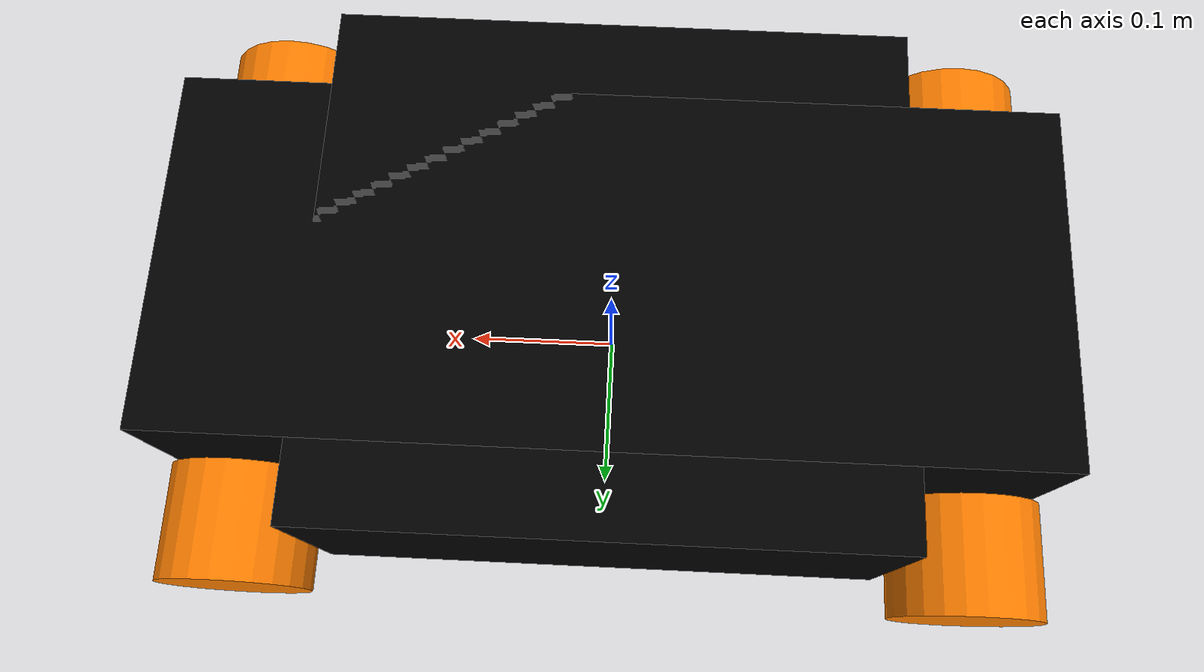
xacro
<?xml version="1.0"?>
<robot xmlns:xacro="http://ros.org/wiki/xacro" name="robot">

    <!--! Inclui macros de inércia !-->
    <xacro:include filename="inertial_macros.xacro" />

    <!--! MATERIALS !-->
    <material name="black">
        <color rgba="0 0 0 1" />
    </material>

    <material name="white">
        <color rgba="1 1 1 1" />
    </material>

    <material name="red">
        <color rgba="1 0 0 1" />
    </material>

    <material name="orange">
        <color rgba="1 0.5 0 1" />
    </material>

    <material name="blue">
        <color rgba="0 0 1 1" />
    </material>

    <!--! BASE_FOOTPRINT LINK -->
    <link name="base_footprint" />

    <!--! CHASSI (base_link) !-->
    <!--? LINK ?-->
    <link name="base_link">
        <visual>
            <geometry>
                <box size="0.545 0.225 0.140" />
            </geometry>
            <material name="black" />
        </visual>
        <visual>
            <geometry>
                <box size="0.36 0.325 0.140" />
            </geometry>
            <material name="black" />
        </visual>
        <collision>
            <geometry>
                <box size="0.545 0.225 0.140" />
            </geometry>
        </collision>
        <xacro:inertial_box mass="1.0" x="0.545" y="0.225" z="0.140">
            <origin xyz="0 0 0" />
        </xacro:inertial_box>
    </link>

    <joint name="footprint_to_base_link" type="fixed">
        <parent link="base_footprint" />
        <child link="base_link" />
        <origin xyz="0 0 0.095" rpy="0 0 0" />
    </joint>

    <gazebo reference="base_link">
        <material>Gazebo\Black</material>
    </gazebo>

    <!--! FRONT LEFT WHEEL -->
    <link name="front_left_wheel">
        <visual>
            <geometry>
                <cylinder radius="0.05" length="0.075" />
            </geometry>
            <origin rpy="-1.57 0 0" xyz="0 0 0" />
            <material name="orange" />
        </visual>
        <collision>
            <geometry>
                <cylinder radius="0.05" length="0.075" />
            </geometry>
            <origin rpy="-1.57 0 0" xyz="0 0 0" />
        </collision>
        <xacro:inertial_cylinder mass="0.1" length="0.075" radius="0.05">
            <origin xyz="0 0 0" />
        </xacro:inertial_cylinder>
    </link>

    <joint name="fl_wheel_joint" type="continuous">
        <parent link="base_link" />
        <child link="front_left_wheel" />
        <origin xyz="0.237 -0.150 -0.055" rpy="0 0 0" />
        <axis xyz="0 1 0" />
    </joint>

    <gazebo reference="front_left_wheel">
        <material>Gazebo\Blue</material>
        <mecanum_drive>
            <roller_count>6</roller_count>
            <roller_angle>45</roller_angle>
        </mecanum_drive>
    </gazebo>

    <!--! FRONT RIGHT WHEEL -->
    <link name="front_right_wheel">
        <visual>
            <geometry>
                <cylinder radius="0.05" length="0.075" />
            </geometry>
            <origin rpy="-1.57 0 0" xyz="0 0 0" />
            <material name="orange" />
        </visual>
        <collision>
            <geometry>
                <cylinder radius="0.05" length="0.075" />
            </geometry>
            <origin rpy="-1.57 0 0" xyz="0 0 0" />
        </collision>
        <xacro:inertial_cylinder mass="0.1" length="0.075" radius="0.05">
            <origin xyz="0 0 0" />
        </xacro:inertial_cylinder>
    </link>

    <joint name="fr_wheel_joint" type="continuous">
        <parent link="base_link" />
        <child link="front_right_wheel" />
        <origin xyz="0.237 0.150 -0.055" rpy="0 0 0" />
        <axis xyz="0 1 0" />
    </joint>

    <gazebo reference="front_right_wheel">
        <material>Gazebo\Blue</material>
        <mecanum_drive>
            <roller_count>6</roller_count>
            <roller_angle>45</roller_angle>
        </mecanum_drive>
    </gazebo>

    <!--! REAR LEFT WHEEL -->
    <link name="rear_left_wheel">
        <visual>
            <geometry>
                <cylinder radius="0.05" length="0.075" />
            </geometry>
            <origin rpy="-1.57 0 0" xyz="0 0 0" />
            <material name="orange" />
        </visual>
        <collision>
            <geometry>
                <cylinder radius="0.05" length="0.075" />
            </geometry>
            <origin rpy="-1.57 0 0" xyz="0 0 0" />
        </collision>
        <xacro:inertial_cylinder mass="0.1" length="0.075" radius="0.05">
            <origin xyz="0 0 0" />
        </xacro:inertial_cylinder>
    </link>

    <joint name="rl_wheel_joint" type="continuous">
        <parent link="base_link" />
        <child link="rear_left_wheel" />
        <origin xyz="-0.237 -0.150 -0.055" rpy="0 0 0" />
        <axis xyz="0 1 0" />
    </joint>

    <gazebo reference="rear_left_wheel">
        <material>Gazebo\Blue</material>
        <mecanum_drive>
            <roller_count>6</roller_count>
            <roller_angle>45</roller_angle>
        </mecanum_drive>
    </gazebo>

    <!--! REAR RIGHT WHEEL -->
    <link name="rear_right_wheel">
        <visual>
            <geometry>
                <cylinder radius="0.05" length="0.075" />
            </geometry>
            <origin rpy="-1.57 0 0" xyz="0 0 0" />
            <material name="orange" />
        </visual>
        <collision>
            <geometry>
                <cylinder radius="0.05" length="0.075" />
            </geometry>
            <origin rpy="-1.57 0 0" xyz="0 0 0" />
        </collision>
        <xacro:inertial_cylinder mass="0.1" length="0.075" radius="0.05">
            <origin xyz="0 0 0" />
        </xacro:inertial_cylinder>
    </link>

    <joint name="rr_wheel_joint" type="continuous">
        <parent link="base_link" />
        <child link="rear_right_wheel" />
        <origin xyz="-0.237 0.150 -0.055" rpy="0 0 0" />
        <axis xyz="0 1 0" />
    </joint>

    <gazebo reference="rear_right_wheel">
        <material>Gazebo\Blue</material>
        <mecanum_drive>
            <roller_count>6</roller_count>
            <roller_angle>45</roller_angle>
        </mecanum_drive>
    </gazebo>

</robot>
